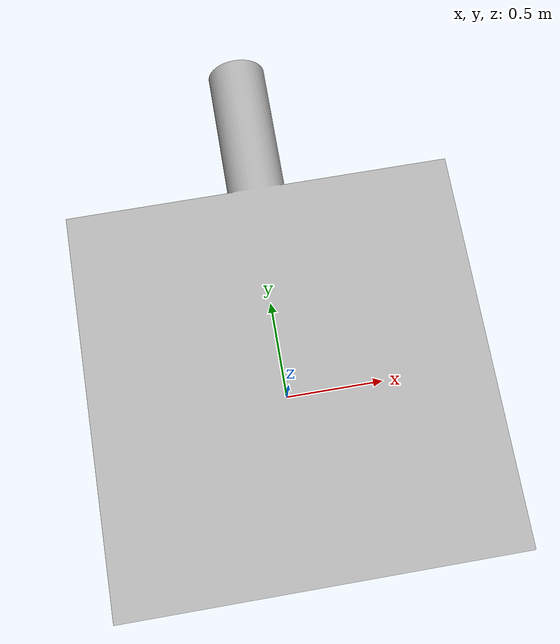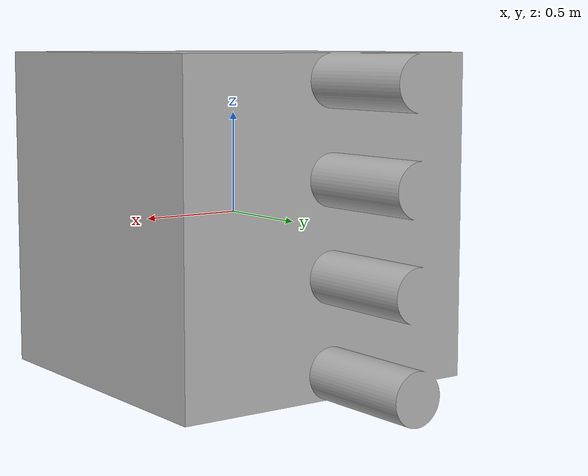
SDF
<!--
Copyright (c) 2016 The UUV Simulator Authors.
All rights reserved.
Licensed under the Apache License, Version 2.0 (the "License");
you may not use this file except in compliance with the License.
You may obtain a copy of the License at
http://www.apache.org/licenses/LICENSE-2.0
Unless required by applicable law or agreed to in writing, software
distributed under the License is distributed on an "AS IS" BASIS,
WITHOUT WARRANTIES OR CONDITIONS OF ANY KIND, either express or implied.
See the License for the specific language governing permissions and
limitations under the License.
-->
<?xml version="1.0" ?>
<sdf version="1.5">
  <model name="mmt_measurement_cube">
    <static>true</static>
    <link name="link">
      <collision name="measurement_cube">
        <pose>0 0 0 0 0 0</pose>
        <geometry>
          <mesh>
            <uri>model://measurement_cube/meshes/measurement_cube_v0.dae</uri>
            <scale>0.002 0.002 0.002</scale>
          </mesh>
        </geometry>
      </collision>

      <visual name="measurement_cube">
        <cast_shadows>true</cast_shadows>
        <pose>0 0 0 0 0 0</pose>
        <geometry>
          <mesh>
            <uri>model://measurement_cube/meshes/measurement_cube_v0.dae</uri>
            <scale>0.002 0.002 0.002</scale>
          </mesh>
        </geometry>
      </visual>
    </link>
  </model>
</sdf>
